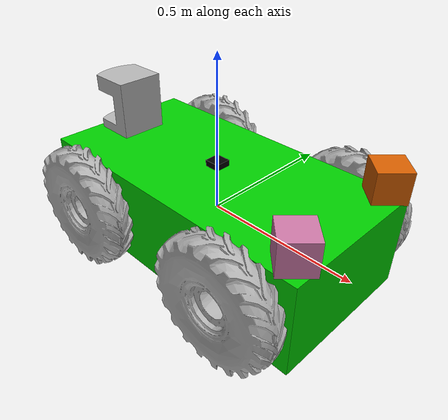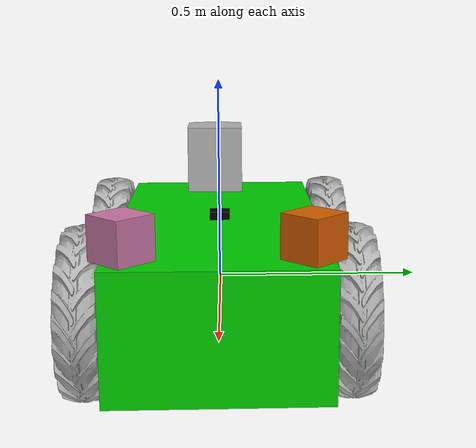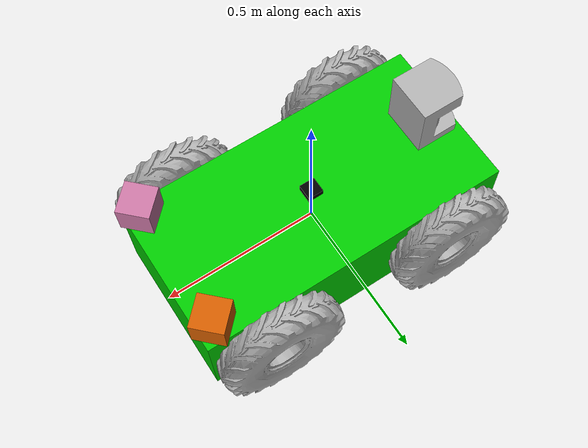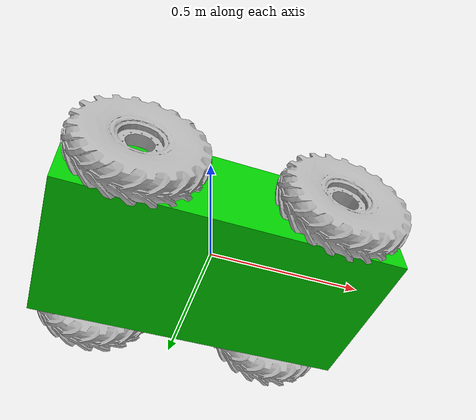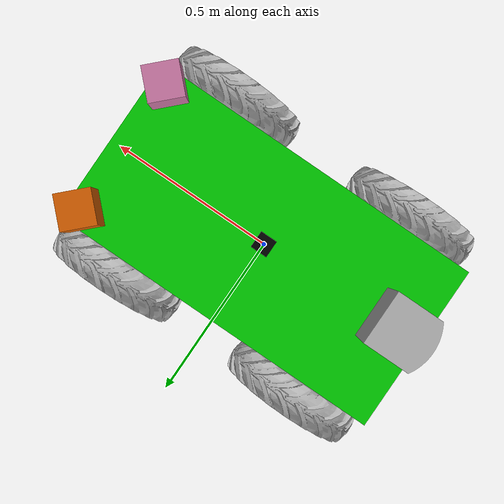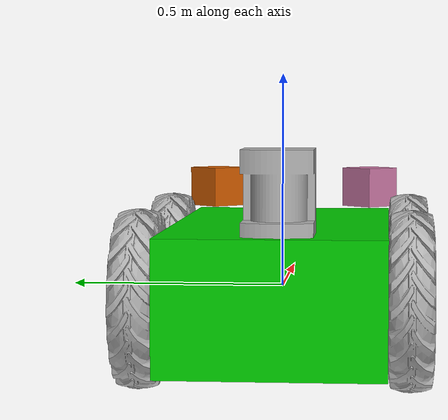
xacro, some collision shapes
<?xml version="1.0"?>
<robot name="robot4" xmlns:xacro="http://ros.org/wiki/xacro">

    <xacro:arg name="gazebo" default="false"/>
    <xacro:property name="gazebo" value="$(arg gazebo)"/>

    <xacro:include filename="$(find urdf_example1)/description/urdf/macros/materials.xacro"/>
    <xacro:include filename="$(find urdf_example1)/description/urdf/macros/base.xacro"/>
    <xacro:include filename="$(find urdf_example1)/description/urdf/macros/wheel.xacro"/>
    <xacro:include filename="$(find urdf_example1)/description/urdf/macros/laser_scanners.xacro"/>
    <xacro:include filename="$(find urdf_example1)/description/urdf/macros/imu.xacro"/>
    <xacro:include filename="$(find urdf_example1)/description/urdf/macros/gazebo_top_level_plugins.xacro"/>

    <!--base dimensions (length, width and height) and mass-->
    <xacro:property name="bl" value="1"/>
    <xacro:property name="bw" value="0.5"/>
    <xacro:property name="bh" value="0.3"/>
    <xacro:property name="bm" value="10"/>

    <!--wheel dimensions (radius and thickness) and mass-->
    <xacro:property name="wr" value="0.2"/>
    <xacro:property name="wt" value="0.1"/>
    <xacro:property name="wm" value="1"/>

    <!--Create base-->
    <xacro:base/>

    <!--Create wheels-->
    <xacro:wheel name="front_right" x="${bl/2-wr}" y="${-(bw+wt)/2}"/>
    <xacro:wheel name="back_right" x="${-bl/2+wr}" y="${-(bw+wt)/2}"/>
    <xacro:wheel name="back_left" x="${-bl/2+wr}" y="${(bw+wt)/2}"/>
    <xacro:wheel name="front_left" x="${bl/2-wr}" y="${(bw+wt)/2}"/>

    <!--Add laser scanners-->
    <xacro:hokuyo name="front_left_scan" xyz="${bl/2-0.05} ${bw/2-0.05} ${bh/2+0.06}" rpy="0 0 ${pi/4}"/>
    <xacro:hokuyo name="front_right_scan" xyz="${bl/2-0.05} ${-bw/2+0.05} ${bh/2+0.06}" rpy="0 0 ${-pi/4}"/>
    <xacro:sick name="back_scan" xyz="${-bl/2+0.08} 0 ${bh/2+0.08}" rpy="0 0 ${-pi}"/>

    <!--Add IMU-->
    <xacro:phidgets name="imu" xyz="0 0 ${bh/2+0.01}" rpy="0 0 0"/>

    <!--Add top-level gazebo plugins, if requested-->
    <xacro:if value="${gazebo}">
        <xacro:joints_publisher/>
        <xacro:skid_steer/>
    </xacro:if>

</robot>

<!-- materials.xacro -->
<robot>

	<material name="black">
		<color rgba="0.0 0.0 0.0 1.0"/>
	</material>

	<material name="blue">
		<color rgba="0.0 0.0 0.8 1.0"/>
	</material>

	<material name="green">
		<color rgba="0.0 0.8 0.0 1.0"/>
	</material>

	<material name="gray">
		<color rgba="0.7 0.7 0.7 1.0"/>
	</material>

	<material name="darkgray">
		<color rgba="0.3 0.3 0.3 1.0"/>
	</material>

	<material name="red">
		<color rgba="0.8 0.0 0.0 1.0"/>
	</material>

	<material name="white">
		<color rgba="1.0 1.0 1.0 1.0"/>
	</material>

	<material name="yellow">
		<color rgba="0.8 0.8 0.0 1.0"/>
	</material>

</robot>

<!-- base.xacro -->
<robot xmlns:xacro="http://ros.org/wiki/xacro">

    <!--params are: base length, width, height and a gazebo flag-->
    <xacro:macro name="base" params="bl:=^ bw:=^ bh:=^ bm:=^ gazebo:=^">
        <link name="base_link">
            <visual>
                <geometry>
                    <box size="${bl} ${bw} ${bh}"/>
                </geometry>
                <material name="green"/>
            </visual>
            <collision>
                <geometry>
                    <box size="${bl} ${bw} ${bh}"/>
                </geometry>
            </collision>
            <inertial>
                <mass value="${bm}"/>
                <inertia ixx="${bm*(bw**2+bh**2)/12}" ixy="0.0" ixz="0.0" iyy="${bm*(bl**2+bh**2)/12}" iyz="0.0" izz="${bm*(bl**2+bw**2)/12}"/>
            </inertial>
        </link>

        <!--Add gazebo references, if requested-->
        <xacro:if value="${gazebo}">
            <gazebo reference="base_link">
                <material>Gazebo/Green</material>
            </gazebo>
        </xacro:if>

    </xacro:macro>

</robot>

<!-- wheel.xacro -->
<robot xmlns:xacro="http://ros.org/wiki/xacro">

    <!--wheel params are: (distinctive part of) link name, 3d position, radius, thickness, mass and a gazebo flag-->
    <xacro:macro name="wheel" params="name x:=0 y:=0 z:=0 wr:=^ wt:=^ wm:=^ gazebo:=^">
        <joint name="base_to_${name}_wheel" type="continuous">
            <parent link="base_link"/>
            <child link="${name}_wheel"/>
            <origin xyz="${x} ${y} ${z}"/>
            <axis xyz="0 1 0"/>
        </joint>

        <link name="${name}_wheel">
            <visual>
                <origin xyz="0 0 0" rpy="${pi/2} 0 0"/>
                <geometry>
                    <mesh filename="package://urdf_example1/description/meshes/monster_wheel.stl" scale="${2*wr} ${2*wr} ${wt}"/>
                </geometry>
                <material name="gray"/>
            </visual>
            <collision>
                <origin xyz="0 0 0" rpy="${pi/2} 0 0"/>
                <geometry>
                    <cylinder length="${wt}" radius="${wr}"/>
                </geometry>
            </collision>
            <inertial>
                <mass value="${wm}"/>
                <inertia ixx="${(wm*wr**2)/2}" ixy="0.0" ixz="0.0" iyy="${wm*(3*wr**2+wt**2)/12}" iyz="0.0" izz="${wm*(3*wr**2+wt**2)/12}"/>
            </inertial>
        </link>

        <!--Add gazebo references, if requested-->
        <xacro:if value="${gazebo}">
            <gazebo reference="${name}_wheel">
                <mu1>10.0</mu1>
                <mu2>10.0</mu2>
                <kp>1000000.0</kp>
                <kd>1.0</kd>
                <material>Gazebo/Grey</material>
            </gazebo>
        </xacro:if>

    </xacro:macro>

</robot>

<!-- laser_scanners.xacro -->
<robot xmlns:xacro="http://ros.org/wiki/xacro">

    <!--hokuyo URG-04LX-UG01 laser scanner-->
    <!--Parameters are: link/frame name, position, orientation and gazebo flag-->
    <xacro:macro name="hokuyo" params="name xyz rpy gazebo:=^">
        <joint name="base_to_${name}" type="fixed">
            <parent link="base_link"/>
            <child link="${name}"/>
            <origin xyz="${xyz}" rpy="${rpy}"/>
        </joint>

        <link name="${name}">
            <visual>
                <origin xyz="0 0 0" rpy="0 0 0"/>
                <geometry>
                    <mesh filename="package://urdf_example1/description/meshes/hokuyo.dae"/>
                </geometry>
            </visual>
            <collision>
                <origin xyz="0 0 0" rpy="0 0 0"/>
                <geometry>
                    <box size="0.1 0.1 0.1"/>
                </geometry>
            </collision>
            <inertial>
                <mass value="1e-5" />
                <inertia ixx="1e-6" ixy="0" ixz="0" iyy="1e-6" iyz="0" izz="1e-6" />
            </inertial>
        </link>

        <!--Add gazebo references, if requested-->
        <xacro:if value="${gazebo}">
            <gazebo reference="${name}">
                <sensor name="${name}_sensor" type="gpu_ray">
                    <pose>0 0 0 0 0 0</pose>
                    <update_rate>10</update_rate>
                    <visualize>false</visualize>
                    <ray>
                        <scan>
                            <horizontal>
                                <samples>683</samples>
                                <min_angle>${-2*pi/3}</min_angle>
                                <max_angle>${2*pi/3}</max_angle>
                            </horizontal>
                        </scan>
                        <range>
                            <min>0.02</min>
                            <!--should be 5.6, but gazebo exhibits weird behaviour for 5.7 or smaller ???-->
                            <max>5.8</max>
                            <resolution>0.01</resolution>
                        </range>
                        <noise>
                            <type>gaussian</type>
                            <mean>0.0</mean>
                            <stddev>0.05</stddev>
                        </noise>
                    </ray>
                    <plugin name="${name}_plugin" filename="libgazebo_ros_gpu_laser.so">
                        <robotNamespace>/</robotNamespace>
                        <frameName>${name}</frameName>
                        <topicName>${name}</topicName>
                    </plugin>
                </sensor>
            </gazebo>
        </xacro:if>

    </xacro:macro>

    <!--SICK LMS-200 laser scanner-->
    <!--Parameters are: link/frame name, position, orientation and gazebo flag-->
    <xacro:macro name="sick" params="name xyz rpy gazebo:=^">
        <joint name="base_to_${name}" type="fixed">
            <parent link="base_link"/>
            <child link="${name}"/>
            <origin xyz="${xyz}" rpy="${rpy}"/>
        </joint>

        <link name="${name}">
            <visual>
                <origin xyz="0 0 0" rpy="0 0 0"/>
                <geometry>
                    <mesh filename="package://urdf_example1/description/meshes/lms200.dae"/>
                </geometry>
            </visual>
            <collision>
                <origin xyz="0 0 0" rpy="0 0 0"/>
                <geometry>
                    <box size="0.156 0.155 0.185"/>
                </geometry>
            </collision>
            <inertial>
                <mass value="1e-5" />
                <inertia ixx="1e-6" ixy="0" ixz="0" iyy="1e-6" iyz="0" izz="1e-6" />
            </inertial>
        </link>

        <!--Add gazebo references, if requested-->
        <xacro:if value="${gazebo}">
            <gazebo reference="${name}">
                <sensor name="${name}_sensor" type="gpu_ray">
                    <pose>0 0 0 0 0 0</pose>
                    <update_rate>75</update_rate>
                    <visualize>false</visualize>
                    <ray>
                        <scan>
                            <horizontal>
                                <samples>361</samples>
                                <min_angle>${-pi/2}</min_angle>
                                <max_angle>${pi/2}</max_angle>
                            </horizontal>
                        </scan>
                        <range>
                            <min>0.02</min>
                            <max>10.0</max>
                            <resolution>0.01</resolution>
                        </range>
                        <noise>
                            <type>gaussian</type>
                            <mean>0.0</mean>
                            <stddev>0.015</stddev>
                        </noise>
                    </ray>
                    <plugin name="${name}_plugin" filename="libgazebo_ros_gpu_laser.so">
                        <robotNamespace>/</robotNamespace>
                        <frameName>${name}</frameName>
                        <topicName>${name}</topicName>
                    </plugin>
                </sensor>
            </gazebo>
        </xacro:if>

    </xacro:macro>

</robot>

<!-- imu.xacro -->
<robot xmlns:xacro="http://ros.org/wiki/xacro">

    <!--PhidgetSpatial 3/3/3 imu-->
    <!--Parameters are: link/frame name, position, orientation and gazebo flag-->
    <xacro:macro name="phidgets" params="name xyz rpy gazebo:=^">
        <joint name="base_to_${name}" type="fixed">
            <parent link="base_link"/>
            <child link="${name}"/>
            <origin xyz="${xyz}" rpy="${rpy}"/>
        </joint>

        <link name="${name}">
            <visual>
                <origin xyz="0 0 0" rpy="0 0 0"/>
                <geometry>
                    <box size="0.05 0.05 0.02"/>
                </geometry>
                <material name="black"/>
            </visual>
            <collision>
                <origin xyz="0 0 0" rpy="0 0 0"/>
                <geometry>
                    <box size="0.05 0.05 0.02"/>
                </geometry>
            </collision>
            <inertial>
                <mass value="1e-5" />
                <inertia ixx="1e-6" ixy="0" ixz="0" iyy="1e-6" iyz="0" izz="1e-6" />
            </inertial>
        </link>

        <!--Add gazebo references, if requested-->
        <xacro:if value="${gazebo}">
            <gazebo reference="${name}">
                <gravity>true</gravity>
                <material value="Gazebo/Grey"/>
                <sensor name="${name}_sensor" type="imu">
                    <pose>0 0 0 0 0 0</pose>
                    <plugin name="${name}_plugin" filename="libgazebo_ros_imu_sensor.so">
                        <robotNamespace>/</robotNamespace>
                        <frameName>${name}</frameName>
                        <topicName>${name}</topicName>
                        <xyzOffset>0 0 0</xyzOffset>
                        <rpyOffset>0 0 0</rpyOffset>
                        <updateRateHZ>250</updateRateHZ>
                        <gaussianNoise>0.003</gaussianNoise>
                    </plugin>
                </sensor>
            </gazebo>
        </xacro:if>

    </xacro:macro>

</robot>
